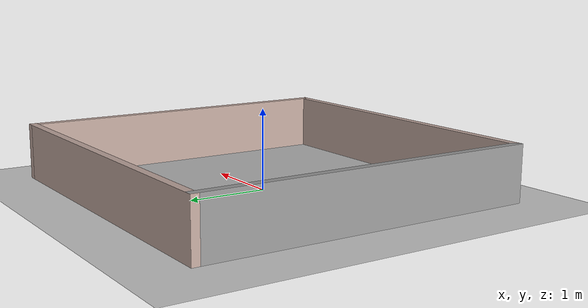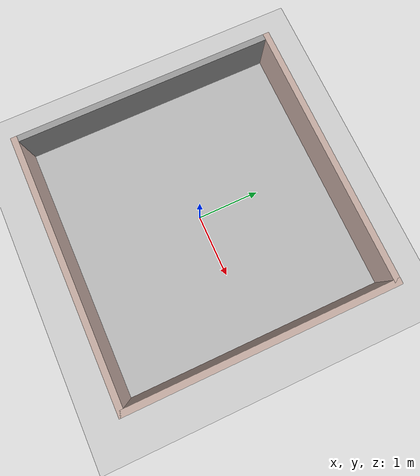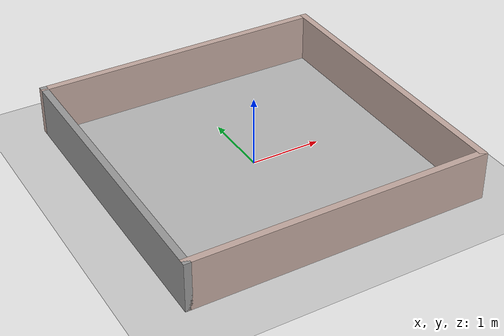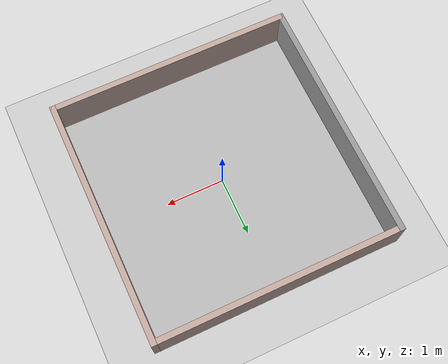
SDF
<sdf version="1.7">
 <world name="default">
  <light name="sun" type="directional">
   <pose>0 0 10 0 -0 0</pose>
   <diffuse>0.8 0.8 0.8 1</diffuse>
   <specular>0.2 0.2 0.2 1</specular>
   <attenuation>
    <range>1000</range>
    <constant>0.9</constant>
    <linear>0.01</linear>
    <quadratic>0.001</quadratic>
   </attenuation>
   <direction>-0.5 0.1 -0.9</direction>
   <spot><inner_angle>0</inner_angle><outer_angle>0</outer_angle><falloff>0</falloff></spot>
  </light>
  <model name="ground_plane">
   <static>1</static>
   <link name="link">
    <collision name="collision">
     <geometry><plane><normal>0 0 1</normal><size>100 100</size></plane></geometry>
     <surface>
      <contact><collide_bitmask>65535</collide_bitmask></contact>
      <friction><ode><mu>100</mu><mu2>50</mu2></ode></friction>
     </surface>
    </collision>
    <visual name="visual">
     <cast_shadows>0</cast_shadows>
     <geometry><plane><normal>0 0 1</normal><size>100 100</size></plane></geometry>
     <material>
      <script><uri>file://media/materials/scripts/gazebo.material</uri><name>Gazebo/Grey</name></script>
     </material>
    </visual>
   </link>
  </model>
  <gravity>0 0 -9.8</gravity>
  <magnetic_field>6e-06 2.3e-05 -4.2e-05</magnetic_field>
  <atmosphere type="adiabatic"/>
  <physics type="ode">
   <max_step_size>0.001</max_step_size>
   <real_time_factor>1</real_time_factor>
   <real_time_update_rate>1000</real_time_update_rate>
  </physics>
  <scene><ambient>0.4 0.4 0.4 1</ambient><background>0.7 0.7 0.7 1</background><shadows>1</shadows></scene>
  <spherical_coordinates>
   <surface_model>EARTH_WGS84</surface_model>
   <latitude_deg>0</latitude_deg>
   <longitude_deg>0</longitude_deg>
   <elevation>0</elevation>
   <heading_deg>0</heading_deg>
  </spherical_coordinates>
  <model name="map_one">
   <pose>0.005844 0.0039 0 0 -0 0</pose>
   <link name="Wall_0">
    <collision name="Wall_0_Collision">
     <geometry><box><size>4.3 0.1 0.7</size></box></geometry>
     <pose>0 0 0.35 0 -0 0</pose>
    </collision>
    <visual name="Wall_0_Visual">
     <pose>0 0 0.35 0 -0 0</pose>
     <geometry><box><size>4.3 0.1 0.7</size></box></geometry>
     <material>
      <script><uri>file://media/materials/scripts/gazebo.material</uri><name>Gazebo/Grey</name></script>
      <ambient>0.760784 0.662745 0.627451 1</ambient>
     </material>
     <meta><layer>0</layer></meta>
    </visual>
    <pose>0 -2.1 0 0 -0 0</pose>
   </link>
   <link name="Wall_1">
    <collision name="Wall_1_Collision">
     <geometry><box><size>4.3 0.1 0.7</size></box></geometry>
     <pose>0 0 0.35 0 -0 0</pose>
    </collision>
    <visual name="Wall_1_Visual">
     <pose>0 0 0.35 0 -0 0</pose>
     <geometry><box><size>4.3 0.1 0.7</size></box></geometry>
     <material>
      <script><uri>file://media/materials/scripts/gazebo.material</uri><name>Gazebo/Grey</name></script>
      <ambient>0.760784 0.662745 0.627451 1</ambient>
     </material>
     <meta><layer>0</layer></meta>
    </visual>
    <pose>2.1 0 0 0 -0 1.5708</pose>
   </link>
   <link name="Wall_2">
    <collision name="Wall_2_Collision">
     <geometry><box><size>4.3 0.1 0.7</size></box></geometry>
     <pose>0 0 0.35 0 -0 0</pose>
    </collision>
    <visual name="Wall_2_Visual">
     <pose>0 0 0.35 0 -0 0</pose>
     <geometry><box><size>4.3 0.1 0.7</size></box></geometry>
     <material>
      <script><uri>file://media/materials/scripts/gazebo.material</uri><name>Gazebo/Grey</name></script>
      <ambient>0.760784 0.662745 0.627451 1</ambient>
     </material>
     <meta><layer>0</layer></meta>
    </visual>
    <pose>0 2.1 0 0 -0 3.14159</pose>
   </link>
   <link name="Wall_3">
    <collision name="Wall_3_Collision">
     <geometry><box><size>4.3 0.1 0.7</size></box></geometry>
     <pose>0 0 0.35 0 -0 0</pose>
    </collision>
    <visual name="Wall_3_Visual">
     <pose>0 0 0.35 0 -0 0</pose>
     <geometry><box><size>4.3 0.1 0.7</size></box></geometry>
     <material>
      <script><uri>file://media/materials/scripts/gazebo.material</uri><name>Gazebo/Grey</name></script>
      <ambient>1 1 1 1</ambient>
     </material>
     <meta><layer>0</layer></meta>
    </visual>
    <pose>-2.1 0 0 0 -0 -1.5708</pose>
   </link>
   <static>1</static>
  </model>
  <model name="my_ground_plane">
   <static>1</static>
   <link name="link">
    <collision name="collision">
     <geometry><plane><normal>0 0 1</normal><size>4.2 4.2</size></plane></geometry>
     <surface><friction><ode><mu>100</mu><mu2>50</mu2></ode></friction></surface>
    </collision>
    <visual name="visual">
     <cast_shadows>0</cast_shadows>
     <geometry><plane><normal>0 0 1</normal><size>4.2 4.2</size></plane></geometry>
     <material>
      <script>
       <uri>model://my_ground_plane/materials/scripts</uri>
       <uri>model://my_ground_plane/materials/textures/</uri>
       <name>MyGroundPlane/Image</name>
      </script>
     </material>
    </visual>
   </link>
   <pose>-0.001948 0.007792 0 0 -0 0</pose>
  </model>
  <light name="user_point_light_0" type="point">
   <pose>0.33902 1.2289 1 0 -0 0</pose>
   <diffuse>0.5 0.5 0.5 1</diffuse>
   <specular>0.1 0.1 0.1 1</specular>
   <attenuation>
    <range>20</range>
    <constant>0.5</constant>
    <linear>0.01</linear>
    <quadratic>0.001</quadratic>
   </attenuation>
   <cast_shadows>0</cast_shadows>
   <direction>0 0 -1</direction>
  </light>
 </world>
</sdf>
